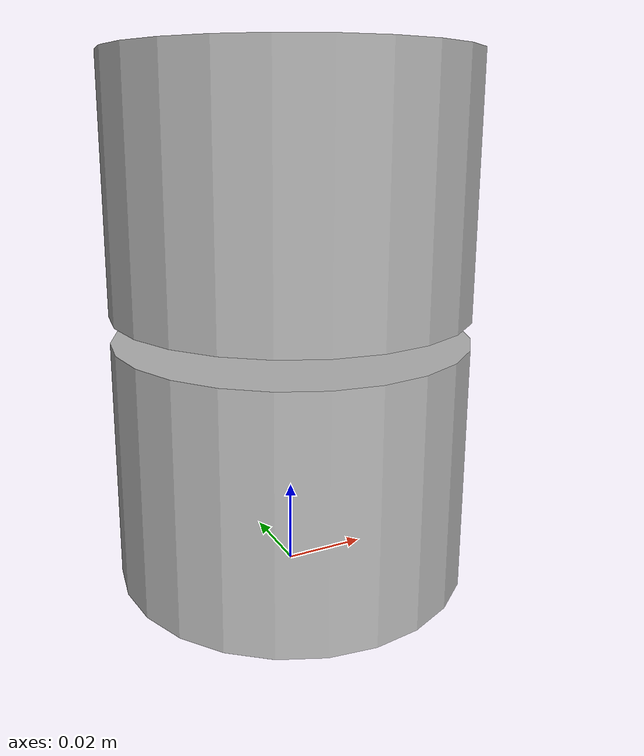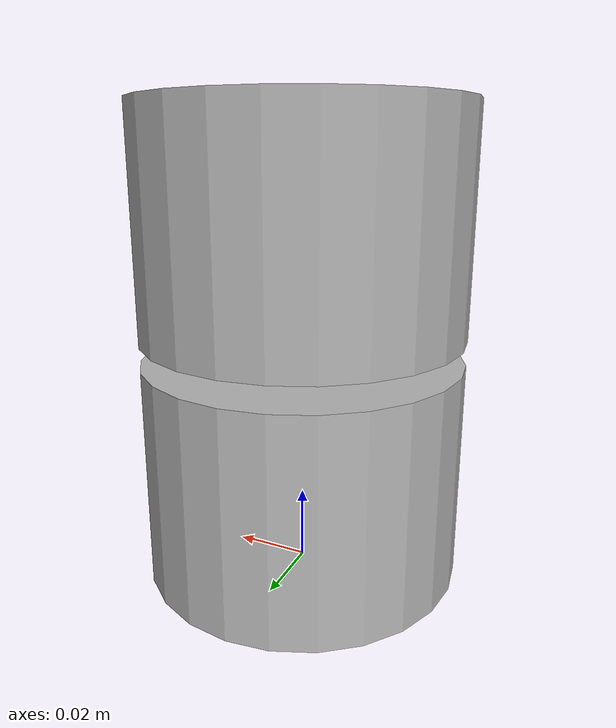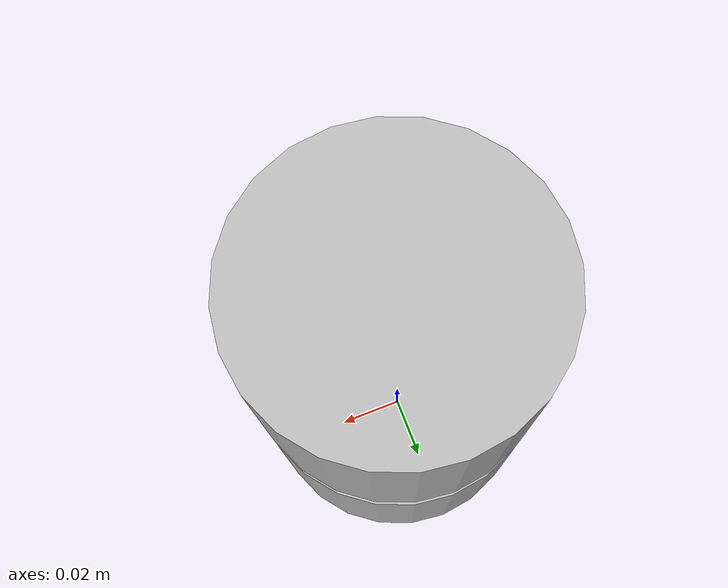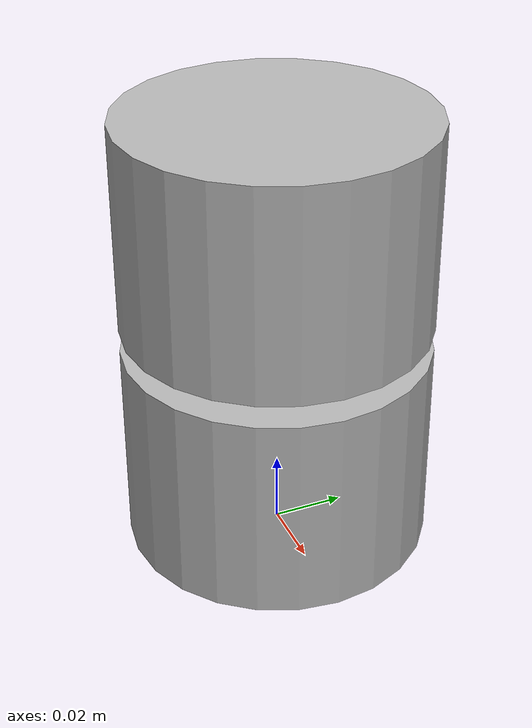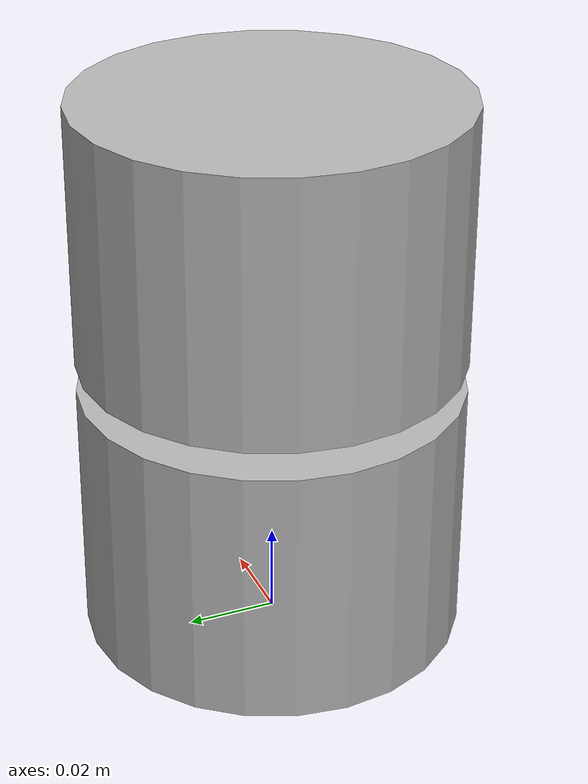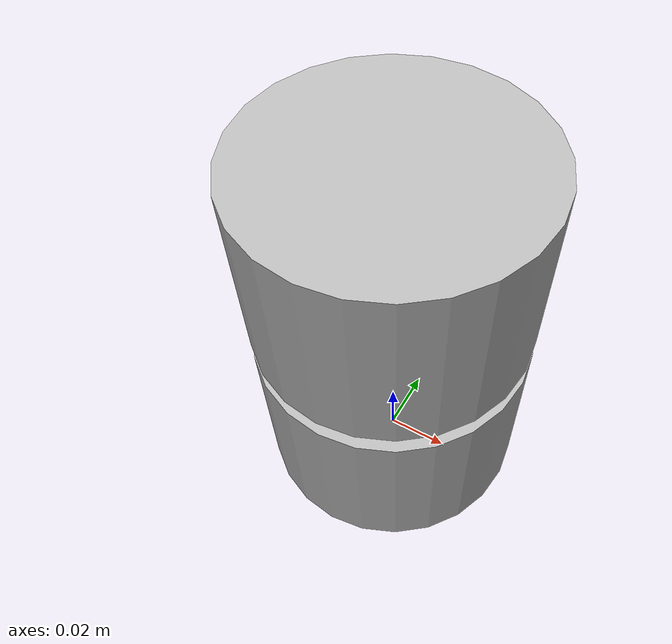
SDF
<?xml version="1.0" ?>
<sdf version="1.5">
    <!--  A velodyne -->
    <model name="volodyne_hdl-32">
      <link name="base">
        <pose>0 0 0.03 0 0 0</pose>
        <collision name="base_collision">
          <geometry>
            <cylinder>
              <radius>.04267</radius>
              <length>.05867</length>
            </cylinder>
          </geometry>
        </collision>
        <visual name="base_visual">
          <geometry>
            <cylinder>
              <radius>.04267</radius>
              <length>.05867</length>
            </cylinder>
          </geometry>
        </visual>
        <inertial>
          <mass>1.2</mass>
          <inertia>
            <ixx>0.001087473</ixx>
            <iyy>0.001087473</iyy>
            <izz>0.001092437</izz>
            <ixy>0</ixy>
            <ixz>0</ixz>
            <iyz>0</iyz>
          </inertia>
        </inertial>

      </link>

      <link name="top">
        <pose>0 0 0.095 0 0 0</pose>
        <collision name="top_collision">
          <geometry>
            <cylinder>
              <radius>.04267</radius>
              <length>.05867</length>
            </cylinder>
          </geometry>
        </collision>

        <visual name="top_visual">
          <geometry>
            <cylinder>
              <radius>.04267</radius>
              <length>.05867</length>
            </cylinder>
          </geometry>
        </visual>
        <inertial>
          <mass>0.1</mass>
          <inertia>
            <ixx>0.000090623</ixx>
            <iyy>0.000090623</iyy>
            <izz>0.000091036</izz>
            <ixy>0</ixy>
            <ixz>0</ixz>
            <iyz>0</iyz>
          </inertia>
        </inertial>
        <sensor type="ray" name="sensor">
          <pose>0 0 -0.004645 1.5707 0 0</pose>
          <visualize>true</visualize>
          <update_rate>30</update_rate>
          <ray>
            <scan>
              <horizontal>
                <samples>1</samples>
                <resolution>1</resolution>
                <min_angle>-0.001</min_angle>
                <max_angle>0.001</max_angle>
              </horizontal>
            </scan>
            <range>
              <min>0.05</min>
              <max>70</max>
              <resolution>0.02</resolution>
            </range>
          </ray>
        </sensor>
      </link>

      <joint type="revolute" name="joint">
        <pose>0 0 -0.036785 0 0 0</pose>
        <parent>base</parent>
        <child>top</child>
        <axis>
          <xyz>0 0 1</xyz>
          <limit>
            <!-- Use a very large number to indicate a continuous revolution -->
            <lower>-10000000000000000</lower>
            <upper>10000000000000000</upper>
          </limit>
        </axis>
      </joint>
    </model>
</sdf>
